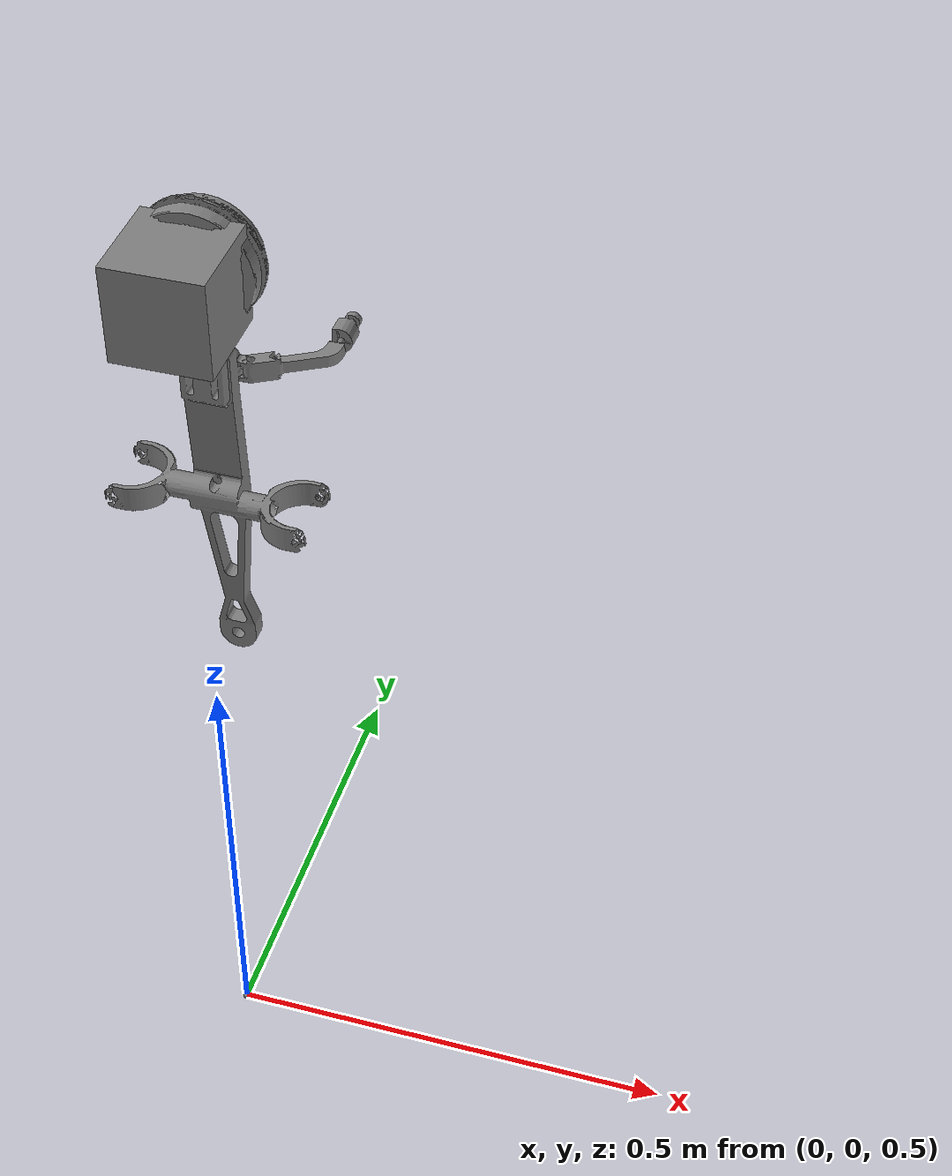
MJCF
<mujoco model="rotational">
  <!-- added manually -->
  <compiler meshdir="obj-files" angle="radian" autolimits="true"/>
  <option timestep="0.02" iterations="5" ls_iterations="10" integrator="implicitfast" gravity="0 0 -9.81">
    <flag contact="disable" eulerdamp="disable" />
  </option>

  <default>
    <default class="rotational_joint">
      <joint damping="1.7" armature="0.000100" frictionloss="0.15" stiffness="0"/>
    </default>
  </default>

<!-- Added delay to simulate undirect input->output -->
  <actuator>
    <position name="position_actuator" gear="1" kp="9.6" kv="0.4" joint="right_knee"/>
  </actuator>
  <asset>
    <mesh name="R_LowerLeg"  scale="-1 1 1"     file="L_LowerLeg.obj"/>
  </asset>

  <worldbody>
    <body name="base" pos="0 0 1.5" quat="1 0 0 0">
      <inertial pos="0 0 0" mass="2" diaginertia="0.00072 0.00072 0.00072"/>
      <geom name="base_visual" size="0.05 0.05 0.05" pos="0 0 0" type="box" />
      <body name="rotational" pos="0 0 0">
        <inertial mass="4.973" pos="0 0 0" fullinertia="0.21540 0.22000 0.03000 0.00140 -0.00290 -0.03550" />

        <joint name="right_knee" axis="0 1 0" class="rotational_joint" />

        <geom name="R_LowerLeg" type="mesh" mesh="R_LowerLeg" contype="0" conaffinity="0" />
        <site name="tip" pos="0 0 -1"/>
        <site name="moment_sensor" pos="0 0 0"/>
      </body>
    </body>
  </worldbody>

  <sensor>
    <framepos name="tracking_site" objtype="site" objname="tip"/>
  </sensor>
  <equality/>
</mujoco>
